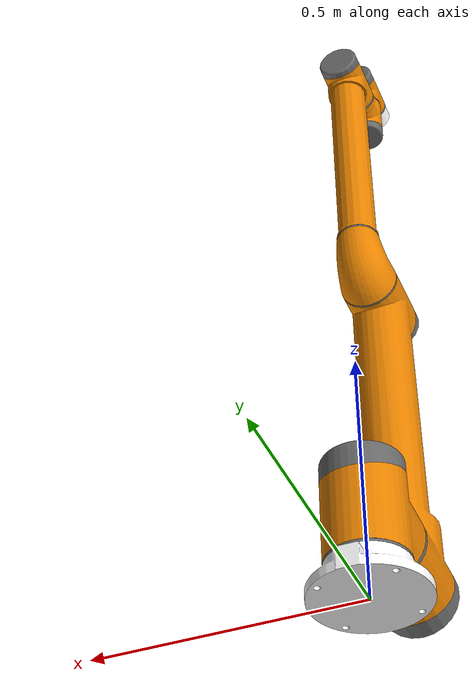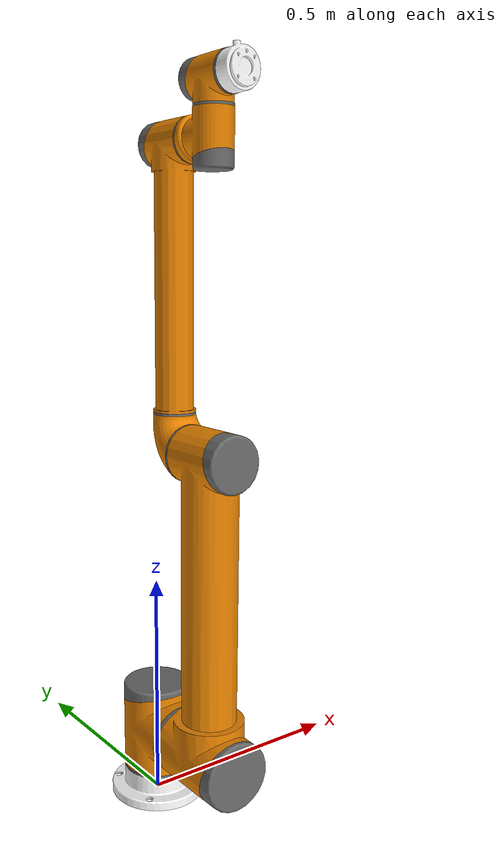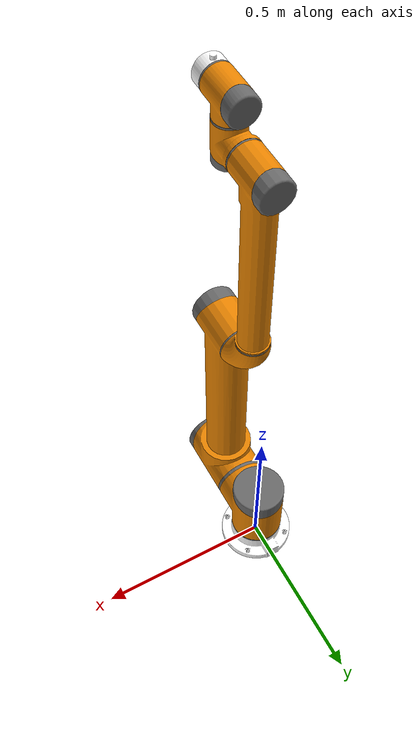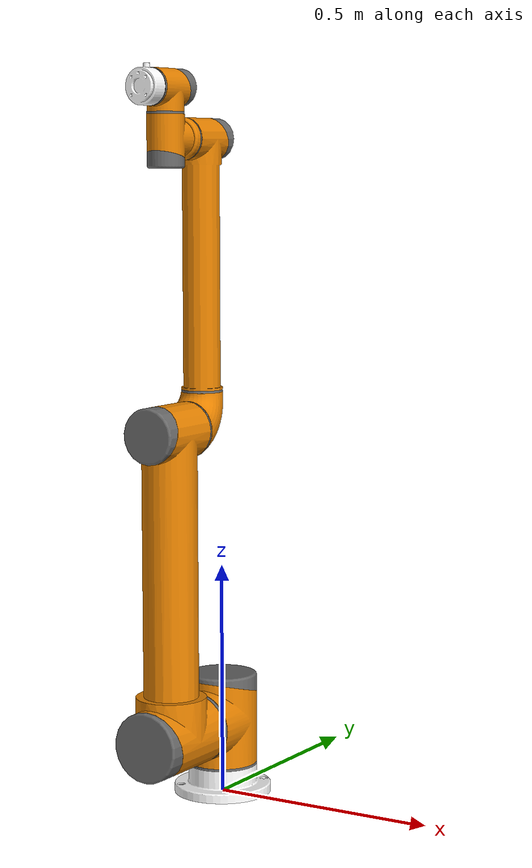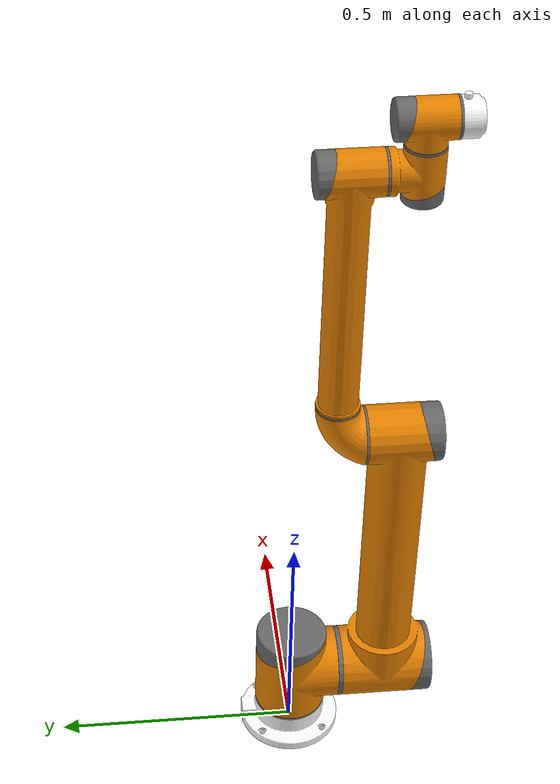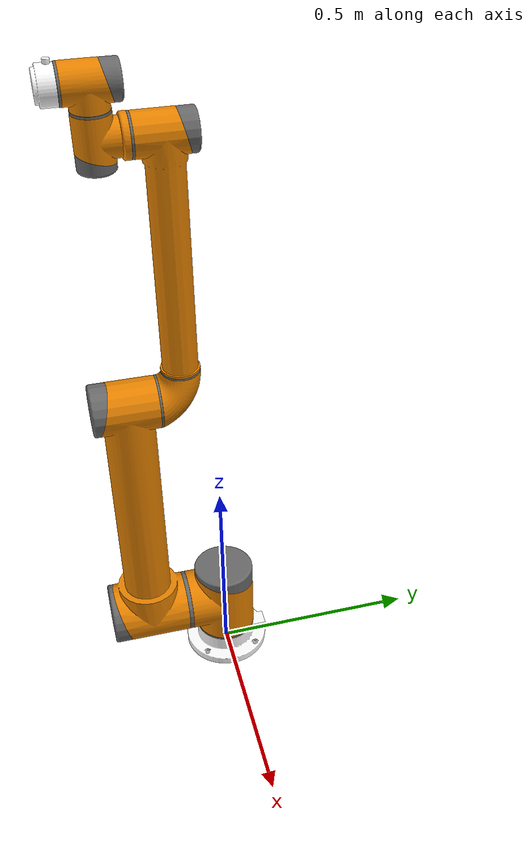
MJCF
<mujoco model="aubo_i10">
  <compiler angle="radian" meshdir="meshes/" />
  <asset>
    <mesh name="aubo_i10_visual_link0" file="aubo_i10/visual/link0.obj" />
    <mesh name="aubo_i10_collision_link0" file="aubo_i10/collision/link0.STL" />
    <mesh name="aubo_i10_visual_link1_materialfbxasc032fbxasc03527" file="aubo_i10/visual/link1_materialfbxasc032fbxasc03527.obj" />
    <mesh name="aubo_i10_visual_link1_materialfbxasc032fbxasc03528" file="aubo_i10/visual/link1_materialfbxasc032fbxasc03528.obj" />
    <mesh name="aubo_i10_collision_link1" file="aubo_i10/collision/link1.STL" />
    <mesh name="aubo_i10_visual_link2_materialfbxasc032fbxasc03528" file="aubo_i10/visual/link2_materialfbxasc032fbxasc03528.obj" />
    <mesh name="aubo_i10_visual_link2_materialfbxasc032fbxasc03529" file="aubo_i10/visual/link2_materialfbxasc032fbxasc03529.obj" />
    <mesh name="aubo_i10_collision_link2" file="aubo_i10/collision/link2.STL" />
    <mesh name="aubo_i10_visual_link3_materialfbxasc032fbxasc03527" file="aubo_i10/visual/link3_materialfbxasc032fbxasc03527.obj" />
    <mesh name="aubo_i10_visual_link3_materialfbxasc032fbxasc03528" file="aubo_i10/visual/link3_materialfbxasc032fbxasc03528.obj" />
    <mesh name="aubo_i10_collision_link3" file="aubo_i10/collision/link3.STL" />
    <mesh name="aubo_i10_visual_link4_materialfbxasc032fbxasc03527" file="aubo_i10/visual/link4_materialfbxasc032fbxasc03527.obj" />
    <mesh name="aubo_i10_visual_link4_materialfbxasc032fbxasc03528" file="aubo_i10/visual/link4_materialfbxasc032fbxasc03528.obj" />
    <mesh name="aubo_i10_collision_link4" file="aubo_i10/collision/link4.STL" />
    <mesh name="aubo_i10_visual_link5_materialfbxasc032fbxasc03527" file="aubo_i10/visual/link5_materialfbxasc032fbxasc03527.obj" />
    <mesh name="aubo_i10_visual_link5_materialfbxasc032fbxasc03528" file="aubo_i10/visual/link5_materialfbxasc032fbxasc03528.obj" />
    <mesh name="aubo_i10_collision_link5" file="aubo_i10/collision/link5.STL" />
    <mesh name="aubo_i10_visual_link6" file="aubo_i10/visual/link6.obj" />
    <mesh name="aubo_i10_collision_link6" file="aubo_i10/collision/link6.STL" />
    <material name="base_link_mat" rgba="1 1 1 1" specular="0" />
    <material name="wrist3_Link_mat" rgba="1 1 1 1" specular="0" />
    <material name="shoulder_Link_mat_1" rgba="0.4118 0.4118 0.4118 1" specular="0" />
    <material name="shoulder_Link_mat_2" rgba="0.9098 0.5137 0 1" specular="0" />
    <material name="upperArm_Link_mat_1" rgba="0.4118 0.4118 0.4118 1" specular="0" />
    <material name="upperArm_Link_mat_2" rgba="0.9098 0.5137 0 1" specular="0" />
    <material name="foreArm_Link_mat_1" rgba="0.9098 0.5137 0 1" specular="0" />
    <material name="foreArm_Link_mat_2" rgba="0.4118 0.4118 0.4118 1" specular="0" />
    <material name="wrist1_Link_mat_1" rgba="0.9098 0.5137 0 1" specular="0" />
    <material name="wrist1_Link_mat_2" rgba="0.4118 0.4118 0.4118 1" specular="0" />
    <material name="wrist2_Link_mat_1" rgba="0.9098 0.5137 0 1" specular="0" />
    <material name="wrist2_Link_mat_2" rgba="0.4118 0.4118 0.4118 1" specular="0" />
  </asset>

  <worldbody>
    <body name="base_link" pos="0 0 0">
      <inertial pos="0.000136 0.001601 0.018986" mass="2.592" fullinertia="0.008524 0.007934 0.015304 -0.000001 -0.000005 -0.000081"/>
      <geom pos="0 0 0" group="1" contype="0" conaffinity="0" material="base_link_mat" type="mesh" mesh="aubo_i10_visual_link0" />
      <geom pos="0 0 0" quat="0.7002416 0 0 -0.7139059" rgba="0.9373 0.2667 0.2667 1" group="3" contype="1" conaffinity="1" type="mesh" mesh="aubo_i10_collision_link0" />
      <body name="shoulder_Link" pos="0 0 0.1632" quat="0 0 0 1">
        <joint name="shoulder_joint" type="hinge" axis="0 0 1" limited="true" range="-6.2831853 6.2831853" damping="0" frictionloss="0"/>
        <inertial pos="-0.000004 0.005112 -0.026275" mass="10.180139" fullinertia="0.043326 0.042233 0.029902 0.000003 0.000003 -0.001767"/>
        <geom pos="0 0 0" group="1" contype="0" conaffinity="0" material="shoulder_Link_mat_1" type="mesh" mesh="aubo_i10_visual_link1_materialfbxasc032fbxasc03527" />
        <geom pos="0 0 0" group="1" contype="0" conaffinity="0" material="shoulder_Link_mat_2" type="mesh" mesh="aubo_i10_visual_link1_materialfbxasc032fbxasc03528" />
        <geom pos="0 0 0" rgba="0.9373 0.2667 0.2667 1" group="3" contype="1" conaffinity="1" type="mesh" mesh="aubo_i10_collision_link1" />
        <body name="upperArm_Link" pos="0 0.2013 0" quat="0.5 -0.5 -0.5 -0.5">
          <joint name="upperArm_joint" type="hinge" axis="0 0 1" limited="true" range="-6.2831853 6.2831853" damping="0" frictionloss="0"/>
          <inertial pos="0.231117 -0.000013 -0.022852" mass="18.096361" fullinertia="0.064904 1.524623 1.505664 0.00003 -0.033711 0.000015"/>
          <geom pos="0 0 0" group="1" contype="0" conaffinity="0" material="upperArm_Link_mat_1" type="mesh" mesh="aubo_i10_visual_link2_materialfbxasc032fbxasc03528" />
          <geom pos="0 0 0" group="1" contype="0" conaffinity="0" material="upperArm_Link_mat_2" type="mesh" mesh="aubo_i10_visual_link2_materialfbxasc032fbxasc03529" />
          <geom pos="0 0 0" rgba="0.9373 0.2667 0.2667 1" group="3" contype="1" conaffinity="1" type="mesh" mesh="aubo_i10_collision_link2" />
          <body name="foreArm_Link" pos="0.647 0 0" quat="0 -1 0 0">
            <joint name="foreArm_joint" type="hinge" axis="0 0 1" limited="true" range="-6.2831853 6.2831853" damping="0" frictionloss="0"/>
            <inertial pos="0.41956 -0.000019 0.118053" mass="4.448092" fullinertia="0.006799 0.246194 0.24479 0.000016 0.004004 0.000005"/>
            <geom pos="0 0 0" group="1" contype="0" conaffinity="0" material="foreArm_Link_mat_1" type="mesh" mesh="aubo_i10_visual_link3_materialfbxasc032fbxasc03527" />
            <geom pos="0 0 0" group="1" contype="0" conaffinity="0" material="foreArm_Link_mat_2" type="mesh" mesh="aubo_i10_visual_link3_materialfbxasc032fbxasc03528" />
            <geom pos="0 0 0" rgba="0.9373 0.2667 0.2667 1" group="3" contype="1" conaffinity="1" type="mesh" mesh="aubo_i10_collision_link3" />
            <body name="wrist1_Link" pos="0.6005 0 0" quat="0 0.7071068 0.7071068 0">
              <joint name="wrist1_joint" type="hinge" axis="0 0 1" limited="true" range="-6.2831853 6.2831853" damping="0" frictionloss="0"/>
              <inertial pos="0.000047 0.009773 -0.005726" mass="1.79166" fullinertia="0.002457 0.00159 0.002183 0.000004 0.000001 -0.000123"/>
              <geom pos="0 0 0" group="1" contype="0" conaffinity="0" material="wrist1_Link_mat_1" type="mesh" mesh="aubo_i10_visual_link4_materialfbxasc032fbxasc03527" />
              <geom pos="0 0 0" group="1" contype="0" conaffinity="0" material="wrist1_Link_mat_2" type="mesh" mesh="aubo_i10_visual_link4_materialfbxasc032fbxasc03528" />
              <geom pos="0 0 0" rgba="0.9373 0.2667 0.2667 1" group="3" contype="1" conaffinity="1" type="mesh" mesh="aubo_i10_collision_link4" />
              <body name="wrist2_Link" pos="0 0.1025 0" quat="0.7071068 -0.7071068 0 0">
                <joint name="wrist2_joint" type="hinge" axis="0 0 1" limited="true" range="-6.2831853 6.2831853" damping="0" frictionloss="0"/>
                <inertial pos="-0.000038 -0.011278 -0.001539" mass="1.628022" fullinertia="0.001951 0.001154 0.001931 0.000003 -0.000001 0.000042"/>
                <geom pos="0 0 0" group="1" contype="0" conaffinity="0" material="wrist2_Link_mat_1" type="mesh" mesh="aubo_i10_visual_link5_materialfbxasc032fbxasc03527" />
                <geom pos="0 0 0" group="1" contype="0" conaffinity="0" material="wrist2_Link_mat_2" type="mesh" mesh="aubo_i10_visual_link5_materialfbxasc032fbxasc03528" />
                <geom pos="0 0 0" rgba="0.9373 0.2667 0.2667 1" group="3" contype="1" conaffinity="1" type="mesh" mesh="aubo_i10_collision_link5" />
                <body name="wrist3_Link" pos="0 -0.094 0" quat="0.7071068 0.7071068 0 0">
                  <joint name="wrist3_joint" type="hinge" axis="0 0 1" limited="true" range="-6.2831853 6.2831853" damping="0" frictionloss="0"/>
                  <inertial pos="0.000022 0.0006 -0.017081" mass="0.1978" fullinertia="0.000118 0.000112 0.000184 0 0 0.000001"/>
                  <geom pos="0 0 0" group="1" contype="0" conaffinity="0" material="wrist3_Link_mat" type="mesh" mesh="aubo_i10_visual_link6" />
                  <geom pos="0 0 0" rgba="0.9373 0.2667 0.2667 1" group="3" contype="1" conaffinity="1" type="mesh" mesh="aubo_i10_collision_link6" />
                </body>
              </body>
            </body>
          </body>
        </body>
      </body>
    </body>
  </worldbody>
  <actuator>
    <position name="shoulder_joint_servo" joint="shoulder_joint" kp="133.5" forcelimited="true" forcerange="-267 267" />
    <position name="upperArm_joint_servo" joint="upperArm_joint" kp="133.5" forcelimited="true" forcerange="-267 267" />
    <position name="foreArm_joint_servo" joint="foreArm_joint" kp="66.5" forcelimited="true" forcerange="-133 133" />
    <position name="wrist1_joint_servo" joint="wrist1_joint" kp="24.5" forcelimited="true" forcerange="-49 49" />
    <position name="wrist2_joint_servo" joint="wrist2_joint" kp="6.75" forcelimited="true" forcerange="-13.5 13.5" />
    <position name="wrist3_joint_servo" joint="wrist3_joint" kp="6.75" forcelimited="true" forcerange="-13.5 13.5" />
  </actuator>
</mujoco>
